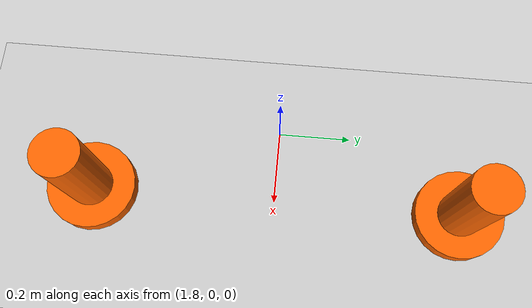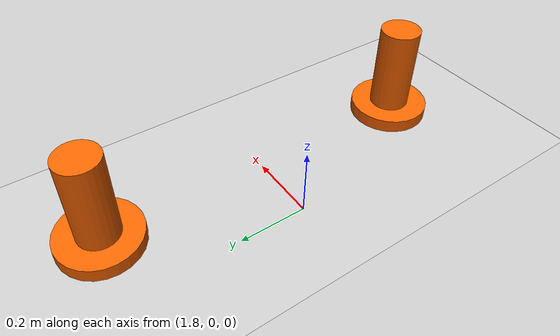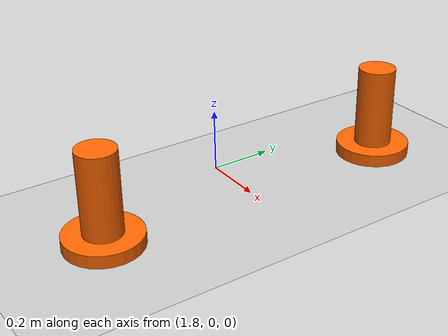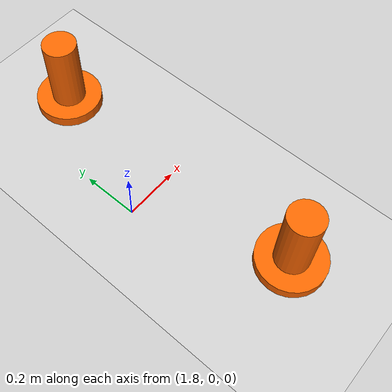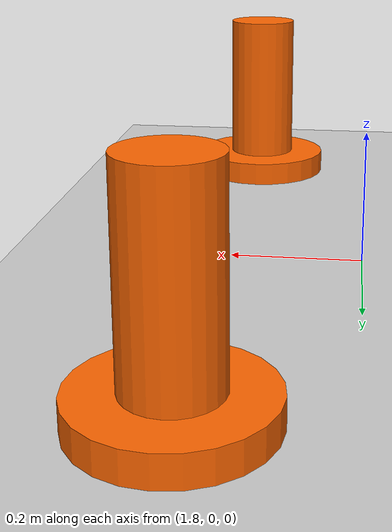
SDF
<?xml version="1.0"?>
<sdf version="1.6">
  <world name="basic_world">

    <include>
      <uri>model://ground_plane</uri>
    </include>

    <include>
      <uri>model://sun</uri>
    </include>

    <physics type="ode">
      <real_time_update_rate>1000.0</real_time_update_rate>
      <max_step_size>0.001</max_step_size>
      <real_time_factor>1</real_time_factor>
      <ode>
        <solver>
          <type>quick</type>
          <iters>150</iters>
          <sor>1.3</sor>
          <use_dynamic_moi_rescaling>1</use_dynamic_moi_rescaling>
        </solver>
        <constraints>
          <cfm>0.00001</cfm>
          <erp>0.2</erp>
          <contact_max_correcting_vel>2000.0</contact_max_correcting_vel>
          <contact_surface_layer>0.001</contact_surface_layer>
        </constraints>
      </ode>
    </physics>

    <gui fullscreen="0">
      <camera name="user_camera">
        <pose>0.5 0 6.0 0 1.4 0</pose>
        <view_controller>orbit</view_controller>
        <projection_type>perspective</projection_type>
      </camera>
    </gui>

    <!-- Cone 1: right side of the robot's forward path -->
    <include>
      <name>traffic_cone_1</name>
      <uri>model://traffic_cone</uri>
      <pose>2.0 0.5 0.0 0 0 0</pose>
    </include>

    <!-- Cone 2: left side of the robot's forward path -->
    <include>
      <name>traffic_cone_2</name>
      <uri>model://traffic_cone</uri>
      <pose>2.0 -0.5 0.0 0 0 0</pose>
    </include>

  </world>
</sdf>

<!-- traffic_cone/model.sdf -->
<sdf version="1.6">
  <model name="traffic_cone">

    <static>true</static>

    <link name="link">

      <!-- Base: wide flat cylinder sitting on ground (center at z=0.02) -->
      <visual name="base_visual">
        <pose>0 0 0.02 0 0 0</pose>
        <geometry>
          <cylinder>
            <radius>0.12</radius>
            <length>0.04</length>
          </cylinder>
        </geometry>
        <material>
          <ambient>1.0 0.4 0.0 1.0</ambient>
          <diffuse>1.0 0.4 0.0 1.0</diffuse>
          <specular>0.1 0.05 0.0 1.0</specular>
        </material>
      </visual>

      <collision name="base_collision">
        <pose>0 0 0.02 0 0 0</pose>
        <geometry>
          <cylinder>
            <radius>0.12</radius>
            <length>0.04</length>
          </cylinder>
        </geometry>
      </collision>

      <!-- Body: narrow tall cylinder on top of base (center at z=0.17) -->
      <visual name="body_visual">
        <pose>0 0 0.17 0 0 0</pose>
        <geometry>
          <cylinder>
            <radius>0.06</radius>
            <length>0.26</length>
          </cylinder>
        </geometry>
        <material>
          <ambient>1.0 0.4 0.0 1.0</ambient>
          <diffuse>1.0 0.4 0.0 1.0</diffuse>
          <specular>0.1 0.05 0.0 1.0</specular>
        </material>
      </visual>

      <collision name="body_collision">
        <pose>0 0 0.17 0 0 0</pose>
        <geometry>
          <cylinder>
            <radius>0.06</radius>
            <length>0.26</length>
          </cylinder>
        </geometry>
      </collision>

      <inertial>
        <mass>1.0</mass>
        <inertia>
          <ixx>0.01</ixx><ixy>0</ixy><ixz>0</ixz>
          <iyy>0.01</iyy><iyz>0</iyz>
          <izz>0.01</izz>
        </inertia>
      </inertial>

    </link>
  </model>
</sdf>
